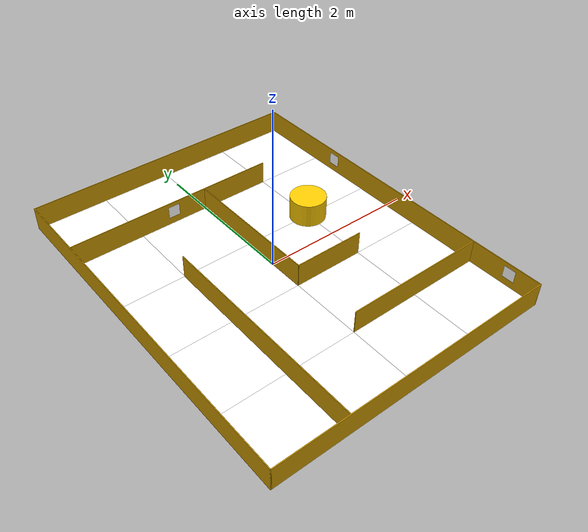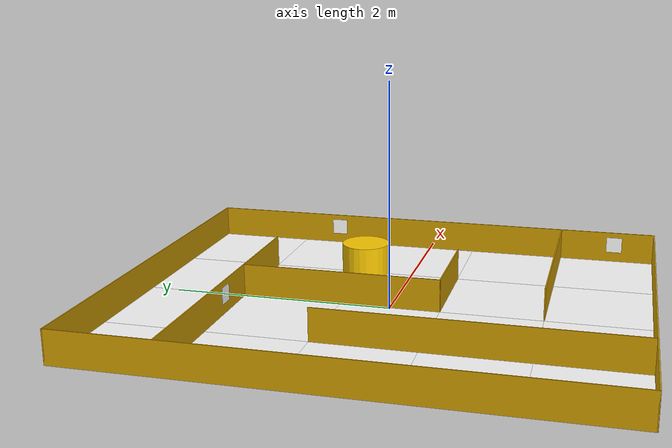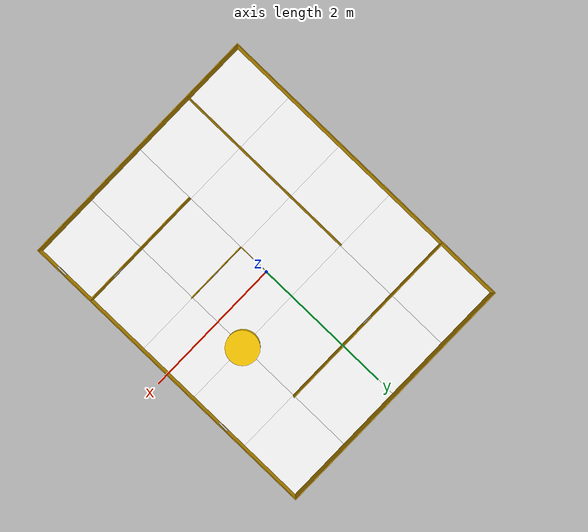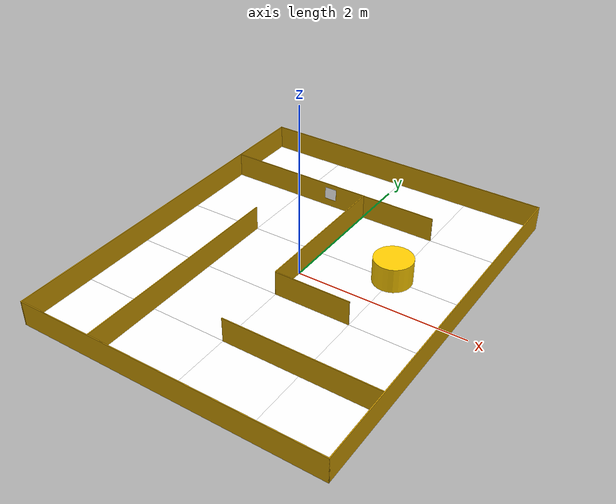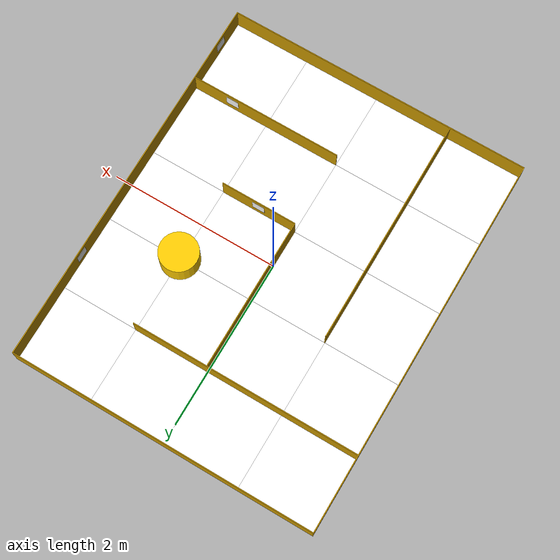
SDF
<?xml version="1.0" ?>
<sdf version="1.8">
  <world name="artpark_arena">
    <physics name="1ms" type="ignored">
      <max_step_size>0.001</max_step_size>
      <real_time_factor>1.0</real_time_factor>
    </physics>
    <plugin filename="ignition-gazebo-physics-system"
            name="ignition::gazebo::systems::Physics"/>
    <plugin filename="ignition-gazebo-scene-broadcaster-system"
            name="ignition::gazebo::systems::SceneBroadcaster"/>
    <plugin filename="ignition-gazebo-user-commands-system"
            name="ignition::gazebo::systems::UserCommands"/>
    <plugin filename="ignition-gazebo-sensors-system"
            name="ignition::gazebo::systems::Sensors">
      <render_engine>ogre2</render_engine>
    </plugin>
    <scene>
      <ambient>1 1 1 1</ambient>
      <background>0.9 0.9 0.9 1</background>
    </scene>
    <light type="directional" name="sun">
      <cast_shadows>false</cast_shadows>
      <pose>0 0 10 0 0 0</pose>
      <diffuse>1 1 1 1</diffuse>
      <specular>1 1 1 1</specular>
      <direction>0 0 -1</direction>
    </light>

    <model name="ground_plane">
      <static>true</static>
      <pose>0 0 0 0 0 0</pose>
      <link name="link">
        <collision name="collision">
          <geometry>
            <plane>
              <normal>0 0 1</normal>
              <size>10 10</size>
            </plane>
          </geometry>
          <surface>
            <friction>
              <ode><mu>0.6</mu><mu2>0.6</mu2></ode>
            </friction>
          </surface>
        </collision>
      </link>
    </model>

    <model name="tile_r0_c0">
      <static>true</static>
      <pose>-1.350 1.800 0 0 0 0</pose>
      <link name="link">
        <visual name="visual">
          <geometry><box><size>0.9 0.9 0.01</size></box></geometry>
          <material>
            <ambient>1 1 1 1</ambient>
            <diffuse>1 1 1 1</diffuse>
            <pbr><metal>
              <albedo_map>/home/piyush/MAHE_Mobility/src/mini_r1_v1_description/worlds/grid_world/materials/textures/tile_r0_c0.png</albedo_map>
              <emissive_map>/home/piyush/MAHE_Mobility/src/mini_r1_v1_description/worlds/grid_world/materials/textures/tile_r0_c0.png</emissive_map>
            </metal></pbr>
            <emissive>1 1 1 1</emissive>
          </material>
        </visual>
      </link>
    </model>
    <model name="tile_r0_c1">
      <static>true</static>
      <pose>-0.450 1.800 0 0 0 0</pose>
      <link name="link">
        <visual name="visual">
          <geometry><box><size>0.9 0.9 0.01</size></box></geometry>
          <material>
            <ambient>1 1 1 1</ambient>
            <diffuse>1 1 1 1</diffuse>
            <pbr><metal>
              <albedo_map>/home/piyush/MAHE_Mobility/src/mini_r1_v1_description/worlds/grid_world/materials/textures/tile_r0_c1.png</albedo_map>
              <emissive_map>/home/piyush/MAHE_Mobility/src/mini_r1_v1_description/worlds/grid_world/materials/textures/tile_r0_c1.png</emissive_map>
            </metal></pbr>
            <emissive>1 1 1 1</emissive>
          </material>
        </visual>
      </link>
    </model>
    <model name="tile_r0_c2">
      <static>true</static>
      <pose>0.450 1.800 0 0 0 0</pose>
      <link name="link">
        <visual name="visual">
          <geometry><box><size>0.9 0.9 0.01</size></box></geometry>
          <material>
            <ambient>1 1 1 1</ambient>
            <diffuse>1 1 1 1</diffuse>
            <pbr><metal>
              <albedo_map>/home/piyush/MAHE_Mobility/src/mini_r1_v1_description/worlds/grid_world/materials/textures/tile_r0_c2.png</albedo_map>
              <emissive_map>/home/piyush/MAHE_Mobility/src/mini_r1_v1_description/worlds/grid_world/materials/textures/tile_r0_c2.png</emissive_map>
            </metal></pbr>
            <emissive>1 1 1 1</emissive>
          </material>
        </visual>
      </link>
    </model>
    <model name="tile_r0_c3">
      <static>true</static>
      <pose>1.350 1.800 0 0 0 0</pose>
      <link name="link">
        <visual name="visual">
          <geometry><box><size>0.9 0.9 0.01</size></box></geometry>
          <material>
            <ambient>1 1 1 1</ambient>
            <diffuse>1 1 1 1</diffuse>
            <pbr><metal>
              <albedo_map>/home/piyush/MAHE_Mobility/src/mini_r1_v1_description/worlds/grid_world/materials/textures/tile_r0_c3.png</albedo_map>
              <emissive_map>/home/piyush/MAHE_Mobility/src/mini_r1_v1_description/worlds/grid_world/materials/textures/tile_r0_c3.png</emissive_map>
            </metal></pbr>
            <emissive>1 1 1 1</emissive>
          </material>
        </visual>
      </link>
    </model>
    <model name="tile_r1_c0">
      <static>true</static>
      <pose>-1.350 0.900 0 0 0 0</pose>
      <link name="link">
        <visual name="visual">
          <geometry><box><size>0.9 0.9 0.01</size></box></geometry>
          <material>
            <ambient>1 1 1 1</ambient>
            <diffuse>1 1 1 1</diffuse>
            <pbr><metal>
              <albedo_map>/home/piyush/MAHE_Mobility/src/mini_r1_v1_description/worlds/grid_world/materials/textures/tile_r1_c0.png</albedo_map>
              <emissive_map>/home/piyush/MAHE_Mobility/src/mini_r1_v1_description/worlds/grid_world/materials/textures/tile_r1_c0.png</emissive_map>
            </metal></pbr>
            <emissive>1 1 1 1</emissive>
          </material>
        </visual>
      </link>
    </model>
    <model name="tile_r1_c1">
      <static>true</static>
      <pose>-0.450 0.900 0 0 0 0</pose>
      <link name="link">
        <visual name="visual">
          <geometry><box><size>0.9 0.9 0.01</size></box></geometry>
          <material>
            <ambient>1 1 1 1</ambient>
            <diffuse>1 1 1 1</diffuse>
            <pbr><metal>
              <albedo_map>/home/piyush/MAHE_Mobility/src/mini_r1_v1_description/worlds/grid_world/materials/textures/tile_r1_c1.png</albedo_map>
              <emissive_map>/home/piyush/MAHE_Mobility/src/mini_r1_v1_description/worlds/grid_world/materials/textures/tile_r1_c1.png</emissive_map>
            </metal></pbr>
            <emissive>1 1 1 1</emissive>
          </material>
        </visual>
      </link>
    </model>
    <model name="tile_r1_c2">
      <static>true</static>
      <pose>0.450 0.900 0 0 0 0</pose>
      <link name="link">
        <visual name="visual">
          <geometry><box><size>0.9 0.9 0.01</size></box></geometry>
          <material>
            <ambient>1 1 1 1</ambient>
            <diffuse>1 1 1 1</diffuse>
            <pbr><metal>
              <albedo_map>/home/piyush/MAHE_Mobility/src/mini_r1_v1_description/worlds/grid_world/materials/textures/tile_r1_c2.png</albedo_map>
              <emissive_map>/home/piyush/MAHE_Mobility/src/mini_r1_v1_description/worlds/grid_world/materials/textures/tile_r1_c2.png</emissive_map>
            </metal></pbr>
            <emissive>1 1 1 1</emissive>
          </material>
        </visual>
      </link>
    </model>
    <model name="tile_r1_c3">
      <static>true</static>
      <pose>1.350 0.900 0 0 0 0</pose>
      <link name="link">
        <visual name="visual">
          <geometry><box><size>0.9 0.9 0.01</size></box></geometry>
          <material>
            <ambient>1 1 1 1</ambient>
            <diffuse>1 1 1 1</diffuse>
            <pbr><metal>
              <albedo_map>/home/piyush/MAHE_Mobility/src/mini_r1_v1_description/worlds/grid_world/materials/textures/tile_r1_c3.png</albedo_map>
              <emissive_map>/home/piyush/MAHE_Mobility/src/mini_r1_v1_description/worlds/grid_world/materials/textures/tile_r1_c3.png</emissive_map>
            </metal></pbr>
            <emissive>1 1 1 1</emissive>
          </material>
        </visual>
      </link>
    </model>
    <model name="tile_r2_c0">
      <static>true</static>
      <pose>-1.350 0.000 0 0 0 0</pose>
      <link name="link">
        <visual name="visual">
          <geometry><box><size>0.9 0.9 0.01</size></box></geometry>
          <material>
            <ambient>1 1 1 1</ambient>
            <diffuse>1 1 1 1</diffuse>
            <pbr><metal>
              <albedo_map>/home/piyush/MAHE_Mobility/src/mini_r1_v1_description/worlds/grid_world/materials/textures/tile_r2_c0.png</albedo_map>
              <emissive_map>/home/piyush/MAHE_Mobility/src/mini_r1_v1_description/worlds/grid_world/materials/textures/tile_r2_c0.png</emissive_map>
            </metal></pbr>
            <emissive>1 1 1 1</emissive>
          </material>
        </visual>
      </link>
    </model>
    <model name="tile_r2_c1">
      <static>true</static>
      <pose>-0.450 0.000 0 0 0 0</pose>
      <link name="link">
        <visual name="visual">
          <geometry><box><size>0.9 0.9 0.01</size></box></geometry>
          <material>
            <ambient>1 1 1 1</ambient>
            <diffuse>1 1 1 1</diffuse>
            <pbr><metal>
              <albedo_map>/home/piyush/MAHE_Mobility/src/mini_r1_v1_description/worlds/grid_world/materials/textures/tile_r2_c1.png</albedo_map>
              <emissive_map>/home/piyush/MAHE_Mobility/src/mini_r1_v1_description/worlds/grid_world/materials/textures/tile_r2_c1.png</emissive_map>
            </metal></pbr>
            <emissive>1 1 1 1</emissive>
          </material>
        </visual>
      </link>
    </model>
    <model name="tile_r2_c2">
      <static>true</static>
      <pose>0.450 0.000 0 0 0 0</pose>
      <link name="link">
        <visual name="visual">
          <geometry><box><size>0.9 0.9 0.01</size></box></geometry>
          <material>
            <ambient>1 1 1 1</ambient>
            <diffuse>1 1 1 1</diffuse>
            <pbr><metal>
              <albedo_map>/home/piyush/MAHE_Mobility/src/mini_r1_v1_description/worlds/grid_world/materials/textures/tile_r2_c2.png</albedo_map>
              <emissive_map>/home/piyush/MAHE_Mobility/src/mini_r1_v1_description/worlds/grid_world/materials/textures/tile_r2_c2.png</emissive_map>
            </metal></pbr>
            <emissive>1 1 1 1</emissive>
          </material>
        </visual>
      </link>
    </model>
    <model name="tile_r2_c3">
      <static>true</static>
      <pose>1.350 0.000 0 0 0 0</pose>
      <link name="link">
        <visual name="visual">
          <geometry><box><size>0.9 0.9 0.01</size></box></geometry>
          <material>
            <ambient>1 1 1 1</ambient>
            <diffuse>1 1 1 1</diffuse>
            <pbr><metal>
              <albedo_map>/home/piyush/MAHE_Mobility/src/mini_r1_v1_description/worlds/grid_world/materials/textures/tile_r2_c3.png</albedo_map>
              <emissive_map>/home/piyush/MAHE_Mobility/src/mini_r1_v1_description/worlds/grid_world/materials/textures/tile_r2_c3.png</emissive_map>
            </metal></pbr>
            <emissive>1 1 1 1</emissive>
          </material>
        </visual>
      </link>
    </model>
    <model name="tile_r3_c0">
      <static>true</static>
      <pose>-1.350 -0.900 0 0 0 0</pose>
      <link name="link">
        <visual name="visual">
          <geometry><box><size>0.9 0.9 0.01</size></box></geometry>
          <material>
            <ambient>1 1 1 1</ambient>
            <diffuse>1 1 1 1</diffuse>
            <pbr><metal>
              <albedo_map>/home/piyush/MAHE_Mobility/src/mini_r1_v1_description/worlds/grid_world/materials/textures/tile_r3_c0.png</albedo_map>
              <emissive_map>/home/piyush/MAHE_Mobility/src/mini_r1_v1_description/worlds/grid_world/materials/textures/tile_r3_c0.png</emissive_map>
            </metal></pbr>
            <emissive>1 1 1 1</emissive>
          </material>
        </visual>
      </link>
    </model>
    <model name="tile_r3_c1">
      <static>true</static>
      <pose>-0.450 -0.900 0 0 0 0</pose>
      <link name="link">
        <visual name="visual">
          <geometry><box><size>0.9 0.9 0.01</size></box></geometry>
          <material>
            <ambient>1 1 1 1</ambient>
            <diffuse>1 1 1 1</diffuse>
            <pbr><metal>
              <albedo_map>/home/piyush/MAHE_Mobility/src/mini_r1_v1_description/worlds/grid_world/materials/textures/tile_r3_c1.png</albedo_map>
              <emissive_map>/home/piyush/MAHE_Mobility/src/mini_r1_v1_description/worlds/grid_world/materials/textures/tile_r3_c1.png</emissive_map>
            </metal></pbr>
            <emissive>1 1 1 1</emissive>
          </material>
        </visual>
      </link>
    </model>
    <model name="tile_r3_c2">
      <static>true</static>
      <pose>0.450 -0.900 0 0 0 0</pose>
      <link name="link">
        <visual name="visual">
          <geometry><box><size>0.9 0.9 0.01</size></box></geometry>
          <material>
            <ambient>1 1 1 1</ambient>
            <diffuse>1 1 1 1</diffuse>
            <pbr><metal>
              <albedo_map>/home/piyush/MAHE_Mobility/src/mini_r1_v1_description/worlds/grid_world/materials/textures/tile_r3_c2.png</albedo_map>
              <emissive_map>/home/piyush/MAHE_Mobility/src/mini_r1_v1_description/worlds/grid_world/materials/textures/tile_r3_c2.png</emissive_map>
            </metal></pbr>
            <emissive>1 1 1 1</emissive>
          </material>
        </visual>
      </link>
    </model>
    <model name="tile_r3_c3">
      <static>true</static>
      <pose>1.350 -0.900 0 0 0 0</pose>
      <link name="link">
        <visual name="visual">
          <geometry><box><size>0.9 0.9 0.01</size></box></geometry>
          <material>
            <ambient>1 1 1 1</ambient>
            <diffuse>1 1 1 1</diffuse>
            <pbr><metal>
              <albedo_map>/home/piyush/MAHE_Mobility/src/mini_r1_v1_description/worlds/grid_world/materials/textures/tile_r3_c3.png</albedo_map>
              <emissive_map>/home/piyush/MAHE_Mobility/src/mini_r1_v1_description/worlds/grid_world/materials/textures/tile_r3_c3.png</emissive_map>
            </metal></pbr>
            <emissive>1 1 1 1</emissive>
          </material>
        </visual>
      </link>
    </model>
    <model name="tile_r4_c0">
      <static>true</static>
      <pose>-1.350 -1.800 0 0 0 0</pose>
      <link name="link">
        <visual name="visual">
          <geometry><box><size>0.9 0.9 0.01</size></box></geometry>
          <material>
            <ambient>1 1 1 1</ambient>
            <diffuse>1 1 1 1</diffuse>
            <pbr><metal>
              <albedo_map>/home/piyush/MAHE_Mobility/src/mini_r1_v1_description/worlds/grid_world/materials/textures/tile_r4_c0.png</albedo_map>
              <emissive_map>/home/piyush/MAHE_Mobility/src/mini_r1_v1_description/worlds/grid_world/materials/textures/tile_r4_c0.png</emissive_map>
            </metal></pbr>
            <emissive>1 1 1 1</emissive>
          </material>
        </visual>
      </link>
    </model>
    <model name="tile_r4_c1">
      <static>true</static>
      <pose>-0.450 -1.800 0 0 0 0</pose>
      <link name="link">
        <visual name="visual">
          <geometry><box><size>0.9 0.9 0.01</size></box></geometry>
          <material>
            <ambient>1 1 1 1</ambient>
            <diffuse>1 1 1 1</diffuse>
            <pbr><metal>
              <albedo_map>/home/piyush/MAHE_Mobility/src/mini_r1_v1_description/worlds/grid_world/materials/textures/tile_r4_c1.png</albedo_map>
              <emissive_map>/home/piyush/MAHE_Mobility/src/mini_r1_v1_description/worlds/grid_world/materials/textures/tile_r4_c1.png</emissive_map>
            </metal></pbr>
            <emissive>1 1 1 1</emissive>
          </material>
        </visual>
      </link>
    </model>
    <model name="tile_r4_c2">
      <static>true</static>
      <pose>0.450 -1.800 0 0 0 0</pose>
      <link name="link">
        <visual name="visual">
          <geometry><box><size>0.9 0.9 0.01</size></box></geometry>
          <material>
            <ambient>1 1 1 1</ambient>
            <diffuse>1 1 1 1</diffuse>
            <pbr><metal>
              <albedo_map>/home/piyush/MAHE_Mobility/src/mini_r1_v1_description/worlds/grid_world/materials/textures/tile_r4_c2.png</albedo_map>
              <emissive_map>/home/piyush/MAHE_Mobility/src/mini_r1_v1_description/worlds/grid_world/materials/textures/tile_r4_c2.png</emissive_map>
            </metal></pbr>
            <emissive>1 1 1 1</emissive>
          </material>
        </visual>
      </link>
    </model>
    <model name="tile_r4_c3">
      <static>true</static>
      <pose>1.350 -1.800 0 0 0 0</pose>
      <link name="link">
        <visual name="visual">
          <geometry><box><size>0.9 0.9 0.01</size></box></geometry>
          <material>
            <ambient>1 1 1 1</ambient>
            <diffuse>1 1 1 1</diffuse>
            <pbr><metal>
              <albedo_map>/home/piyush/MAHE_Mobility/src/mini_r1_v1_description/worlds/grid_world/materials/textures/tile_r4_c3.png</albedo_map>
              <emissive_map>/home/piyush/MAHE_Mobility/src/mini_r1_v1_description/worlds/grid_world/materials/textures/tile_r4_c3.png</emissive_map>
            </metal></pbr>
            <emissive>1 1 1 1</emissive>
          </material>
        </visual>
      </link>
    </model>

    <model name="wall_top">
      <static>true</static>
      <pose>0.0 2.255 0.15 0 0 0</pose>
      <link name="link">
        <collision name="collision">
          <geometry><box><size>3.62 0.01 0.3</size></box></geometry>
        </collision>
        <visual name="visual">
          <geometry><box><size>3.62 0.01 0.3</size></box></geometry>
          <material>
            <ambient>0.8 0.6 0.0 1</ambient>
            <diffuse>0.8 0.6 0.0 1</diffuse>
          </material>
        </visual>
      </link>
    </model>
    <model name="wall_bot">
      <static>true</static>
      <pose>0.0 -2.255 0.15 0 0 0</pose>
      <link name="link">
        <collision name="collision">
          <geometry><box><size>3.62 0.01 0.3</size></box></geometry>
        </collision>
        <visual name="visual">
          <geometry><box><size>3.62 0.01 0.3</size></box></geometry>
          <material>
            <ambient>0.8 0.6 0.0 1</ambient>
            <diffuse>0.8 0.6 0.0 1</diffuse>
          </material>
        </visual>
      </link>
    </model>
    <model name="wall_left">
      <static>true</static>
      <pose>-1.805 0.0 0.15 0 0 0</pose>
      <link name="link">
        <collision name="collision">
          <geometry><box><size>0.01 4.52 0.3</size></box></geometry>
        </collision>
        <visual name="visual">
          <geometry><box><size>0.01 4.52 0.3</size></box></geometry>
          <material>
            <ambient>0.8 0.6 0.0 1</ambient>
            <diffuse>0.8 0.6 0.0 1</diffuse>
          </material>
        </visual>
      </link>
    </model>
    <model name="wall_right">
      <static>true</static>
      <pose>1.805 0.0 0.15 0 0 0</pose>
      <link name="link">
        <collision name="collision">
          <geometry><box><size>0.01 4.52 0.3</size></box></geometry>
        </collision>
        <visual name="visual">
          <geometry><box><size>0.01 4.52 0.3</size></box></geometry>
          <material>
            <ambient>0.8 0.6 0.0 1</ambient>
            <diffuse>0.8 0.6 0.0 1</diffuse>
          </material>
        </visual>
      </link>
    </model>
    <model name="wall_A">
      <static>true</static>
      <pose>-0.9 -0.9 0.15 0 0 0</pose>
      <link name="link">
        <collision name="collision">
          <geometry><box><size>0.01 2.7 0.3</size></box></geometry>
        </collision>
        <visual name="visual">
          <geometry><box><size>0.01 2.7 0.3</size></box></geometry>
          <material>
            <ambient>0.8 0.6 0.0 1</ambient>
            <diffuse>0.8 0.6 0.0 1</diffuse>
          </material>
        </visual>
      </link>
    </model>
    <model name="wall_C">
      <static>true</static>
      <pose>-0.45 1.35 0.15 0 0 0</pose>
      <link name="link">
        <collision name="collision">
          <geometry><box><size>2.7 0.01 0.3</size></box></geometry>
        </collision>
        <visual name="visual">
          <geometry><box><size>2.7 0.01 0.3</size></box></geometry>
          <material>
            <ambient>0.8 0.6 0.0 1</ambient>
            <diffuse>0.8 0.6 0.0 1</diffuse>
          </material>
        </visual>
      </link>
    </model>
    <model name="wall_D">
      <static>true</static>
      <pose>0.0 0.45 0.15 0 0 0</pose>
      <link name="link">
        <collision name="collision">
          <geometry><box><size>0.01 1.8 0.3</size></box></geometry>
        </collision>
        <visual name="visual">
          <geometry><box><size>0.01 1.8 0.3</size></box></geometry>
          <material>
            <ambient>0.8 0.6 0.0 1</ambient>
            <diffuse>0.8 0.6 0.0 1</diffuse>
          </material>
        </visual>
      </link>
    </model>
    <model name="wall_E">
      <static>true</static>
      <pose>0.45 -0.45 0.15 0 0 0</pose>
      <link name="link">
        <collision name="collision">
          <geometry><box><size>0.9 0.01 0.3</size></box></geometry>
        </collision>
        <visual name="visual">
          <geometry><box><size>0.9 0.01 0.3</size></box></geometry>
          <material>
            <ambient>0.8 0.6 0.0 1</ambient>
            <diffuse>0.8 0.6 0.0 1</diffuse>
          </material>
        </visual>
      </link>
    </model>
    <model name="wall_F">
      <static>true</static>
      <pose>0.9 -1.35 0.15 0 0 0</pose>
      <link name="link">
        <collision name="collision">
          <geometry><box><size>1.8 0.01 0.3</size></box></geometry>
        </collision>
        <visual name="visual">
          <geometry><box><size>1.8 0.01 0.3</size></box></geometry>
          <material>
            <ambient>0.8 0.6 0.0 1</ambient>
            <diffuse>0.8 0.6 0.0 1</diffuse>
          </material>
        </visual>
      </link>
    </model>

    <model name="obstacle">
      <static>true</static>
      <pose>0.9 0.45 0.15 0 0 0</pose>
      <link name="link">
        <collision name="collision">
          <geometry><cylinder><radius>0.225</radius><length>0.3</length></cylinder></geometry>
        </collision>
        <visual name="visual">
          <geometry><cylinder><radius>0.225</radius><length>0.3</length></cylinder></geometry>
          <material>
            <ambient>1.0 0.8 0.0 1</ambient>
            <diffuse>1.0 0.8 0.0 1</diffuse>
          </material>
        </visual>
      </link>
    </model>

    <model name="tag0">
      <static>true</static>
      <pose>1.796 0.975 0.175 0 0 3.1416</pose>
      <link name="link">
        <visual name="visual">
          <geometry><box><size>0.001 0.15 0.15</size></box></geometry>
          <material>
            <ambient>1 1 1 1</ambient>
            <diffuse>1 1 1 1</diffuse>
            <pbr><metal>
              <albedo_map>/home/piyush/MAHE_Mobility/src/mini_r1_v1_description/worlds/grid_world/materials/textures/apriltags/tag_0_padded.png</albedo_map>
              <emissive_map>/home/piyush/MAHE_Mobility/src/mini_r1_v1_description/worlds/grid_world/materials/textures/apriltags/tag_0_padded.png</emissive_map>
            </metal></pbr>
            <emissive>1 1 1 1</emissive>
          </material>
        </visual>
      </link>
    </model>

    <model name="tag1">
      <static>true</static>
      <pose>0.45 -0.441 0.175 0 0 0</pose>
      <link name="link">
        <visual name="visual">
          <geometry><box><size>0.15 0.001 0.15</size></box></geometry>
          <material>
            <ambient>1 1 1 1</ambient>
            <diffuse>1 1 1 1</diffuse>
            <pbr><metal>
              <albedo_map>/home/piyush/MAHE_Mobility/src/mini_r1_v1_description/worlds/grid_world/materials/textures/apriltags/tag_1_padded.png</albedo_map>
              <emissive_map>/home/piyush/MAHE_Mobility/src/mini_r1_v1_description/worlds/grid_world/materials/textures/apriltags/tag_1_padded.png</emissive_map>
            </metal></pbr>
            <emissive>1 1 1 1</emissive>
          </material>
        </visual>
      </link>
    </model>

    <model name="tag2">
      <static>true</static>
      <pose>1.32 -1.341 0.175 0 0 0</pose>
      <link name="link">
        <visual name="visual">
          <geometry><box><size>0.15 0.001 0.15</size></box></geometry>
          <material>
            <ambient>1 1 1 1</ambient>
            <diffuse>1 1 1 1</diffuse>
            <pbr><metal>
              <albedo_map>/home/piyush/MAHE_Mobility/src/mini_r1_v1_description/worlds/grid_world/materials/textures/apriltags/tag_2_padded.png</albedo_map>
              <emissive_map>/home/piyush/MAHE_Mobility/src/mini_r1_v1_description/worlds/grid_world/materials/textures/apriltags/tag_2_padded.png</emissive_map>
            </metal></pbr>
            <emissive>1 1 1 1</emissive>
          </material>
        </visual>
      </link>
    </model>

    <model name="tag3">
      <static>true</static>
      <pose>1.796 -1.875 0.175 0 0 3.1416</pose>
      <link name="link">
        <visual name="visual">
          <geometry><box><size>0.001 0.15 0.15</size></box></geometry>
          <material>
            <ambient>1 1 1 1</ambient>
            <diffuse>1 1 1 1</diffuse>
            <pbr><metal>
              <albedo_map>/home/piyush/MAHE_Mobility/src/mini_r1_v1_description/worlds/grid_world/materials/textures/apriltags/tag_3_padded.png</albedo_map>
              <emissive_map>/home/piyush/MAHE_Mobility/src/mini_r1_v1_description/worlds/grid_world/materials/textures/apriltags/tag_3_padded.png</emissive_map>
            </metal></pbr>
            <emissive>1 1 1 1</emissive>
          </material>
        </visual>
      </link>
    </model>

    <model name="tag4">
      <static>true</static>
      <pose>-0.45 1.341 0.175 0 0 0</pose>
      <link name="link">
        <visual name="visual">
          <geometry><box><size>0.15 0.001 0.15</size></box></geometry>
          <material>
            <ambient>1 1 1 1</ambient>
            <diffuse>1 1 1 1</diffuse>
            <pbr><metal>
              <albedo_map>/home/piyush/MAHE_Mobility/src/mini_r1_v1_description/worlds/grid_world/materials/textures/apriltags/tag_4_padded.png</albedo_map>
              <emissive_map>/home/piyush/MAHE_Mobility/src/mini_r1_v1_description/worlds/grid_world/materials/textures/apriltags/tag_4_padded.png</emissive_map>
            </metal></pbr>
            <emissive>1 1 1 1</emissive>
          </material>
        </visual>
      </link>
    </model>
  </world>
</sdf>
